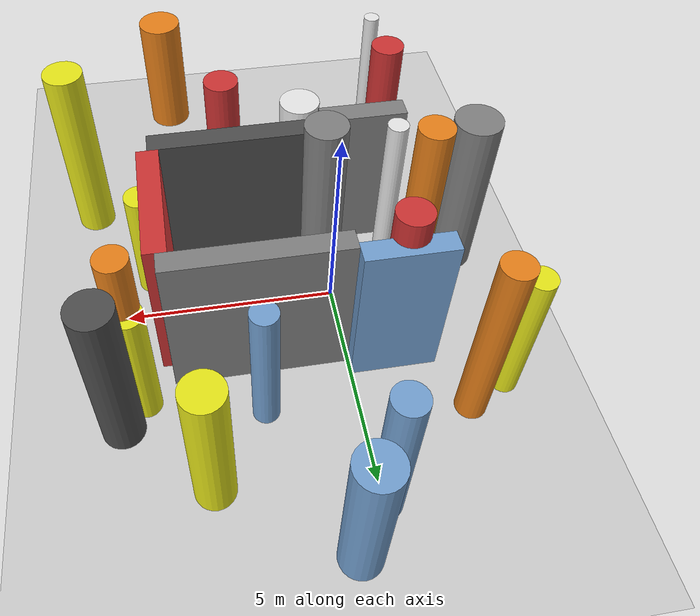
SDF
<?xml version='1.0'?>
<sdf version='1.6'>
  <world name='routeA_rl_v1__dense_recovery__rl_test__cul_de_sac_trap__000114'>
    <!-- Sun light -->
    <light name='sun' type='directional'>
      <cast_shadows>1</cast_shadows>
      <pose>0 0 10 0 0 0</pose>
      <diffuse>0.8 0.8 0.8 1</diffuse>
      <specular>0.2 0.2 0.2 1</specular>
      <attenuation>
        <range>1000</range>
        <constant>0.9</constant>
        <linear>0.01</linear>
        <quadratic>0.001</quadratic>
      </attenuation>
      <direction>-0.5 0.1 -0.9</direction>
    </light>

    <!-- Ground plane -->
    <model name='ground_plane'>
      <static>1</static>
      <link name='link'>
        <collision name='collision'>
          <geometry>
            <plane>
              <normal>0 0 1</normal>
              <size>100 100</size>
            </plane>
          </geometry>
          <surface>
            <contact>
              <collide_bitmask>65535</collide_bitmask>
              <ode/>
            </contact>
            <friction>
              <ode>
                <mu>100</mu>
                <mu2>50</mu2>
              </ode>
              <torsional><ode/></torsional>
            </friction>
            <bounce/>
          </surface>
          <max_contacts>10</max_contacts>
        </collision>
        <visual name='visual'>
          <cast_shadows>0</cast_shadows>
          <geometry>
            <plane>
              <normal>0 0 1</normal>
              <size>100 100</size>
            </plane>
          </geometry>
          <material>
            <script>
              <uri>file://media/materials/scripts/gazebo.material</uri>
              <n>Gazebo/Grey</n>
            </script>
          </material>
        </visual>
      </link>
    </model>

    <!-- Environment -->
    <magnetic_field>6e-06 2.3e-05 -4.2e-05</magnetic_field>
    <atmosphere type='adiabatic'/>
    <physics name='default_physics' default='0' type='ode'>
      <gravity>0 0 -9.8</gravity>
      <max_step_size>0.004</max_step_size>
      <real_time_factor>1</real_time_factor>
      <real_time_update_rate>250</real_time_update_rate>
    </physics>
    <scene>
      <ambient>0.4 0.4 0.4 1</ambient>
      <background>0.7 0.7 0.7 1</background>
      <shadows>1</shadows>
    </scene>
    <wind/>
    <spherical_coordinates>
      <surface_model>EARTH_WGS84</surface_model>
      <latitude_deg>0</latitude_deg>
      <longitude_deg>0</longitude_deg>
      <elevation>0</elevation>
      <heading_deg>0</heading_deg>
    </spherical_coordinates>

    <!-- ============ OBSTACLES (27) ============ -->
    <model name='trap_side_l'>
      <static>1</static>
      <link name='link'>
        <visual name='visual'>
          <geometry>
            <box>
              <size>4.0000 0.5000 4.0000</size>
            </box>
          </geometry>
          <material>
            <script>
              <n>Gazebo/DarkGrey</n>
              <uri>file://media/materials/scripts/gazebo.material</uri>
            </script>
            <ambient>0.3 0.3 0.3 1</ambient>
          </material>
        </visual>
        <collision name='collision'>
          <geometry>
            <box>
              <size>4.0000 0.5000 4.0000</size>
            </box>
          </geometry>
          <max_contacts>10</max_contacts>
          <surface>
            <contact><ode/></contact>
            <bounce/>
            <friction>
              <ode><mu>1</mu><mu2>1</mu2></ode>
              <torsional><ode/></torsional>
            </friction>
          </surface>
        </collision>
      </link>
      <pose>2.0000 -1.7500 2.0000 0 0 0.0000</pose>
    </model>

    <model name='trap_side_r'>
      <static>1</static>
      <link name='link'>
        <visual name='visual'>
          <geometry>
            <box>
              <size>4.0000 0.5000 4.0000</size>
            </box>
          </geometry>
          <material>
            <script>
              <n>Gazebo/Grey</n>
              <uri>file://media/materials/scripts/gazebo.material</uri>
            </script>
            <ambient>0.5 0.5 0.5 1</ambient>
          </material>
        </visual>
        <collision name='collision'>
          <geometry>
            <box>
              <size>4.0000 0.5000 4.0000</size>
            </box>
          </geometry>
          <max_contacts>10</max_contacts>
          <surface>
            <contact><ode/></contact>
            <bounce/>
            <friction>
              <ode><mu>1</mu><mu2>1</mu2></ode>
              <torsional><ode/></torsional>
            </friction>
          </surface>
        </collision>
      </link>
      <pose>2.0000 1.7500 2.0000 0 0 0.0000</pose>
    </model>

    <model name='trap_back'>
      <static>1</static>
      <link name='link'>
        <visual name='visual'>
          <geometry>
            <box>
              <size>0.5000 3.0000 4.0000</size>
            </box>
          </geometry>
          <material>
            <script>
              <n>Gazebo/Red</n>
              <uri>file://media/materials/scripts/gazebo.material</uri>
            </script>
            <ambient>0.8 0.2 0.2 1</ambient>
          </material>
        </visual>
        <collision name='collision'>
          <geometry>
            <box>
              <size>0.5000 3.0000 4.0000</size>
            </box>
          </geometry>
          <max_contacts>10</max_contacts>
          <surface>
            <contact><ode/></contact>
            <bounce/>
            <friction>
              <ode><mu>1</mu><mu2>1</mu2></ode>
              <torsional><ode/></torsional>
            </friction>
          </surface>
        </collision>
      </link>
      <pose>4.0000 0.0000 2.0000 0 0 0.0000</pose>
    </model>

    <model name='trap_funnel_l'>
      <static>1</static>
      <link name='link'>
        <visual name='visual'>
          <geometry>
            <box>
              <size>2.0000 0.5000 4.0000</size>
            </box>
          </geometry>
          <material>
            <script>
              <n>Gazebo/Grey</n>
              <uri>file://media/materials/scripts/gazebo.material</uri>
            </script>
            <ambient>0.5 0.5 0.5 1</ambient>
          </material>
        </visual>
        <collision name='collision'>
          <geometry>
            <box>
              <size>2.0000 0.5000 4.0000</size>
            </box>
          </geometry>
          <max_contacts>10</max_contacts>
          <surface>
            <contact><ode/></contact>
            <bounce/>
            <friction>
              <ode><mu>1</mu><mu2>1</mu2></ode>
              <torsional><ode/></torsional>
            </friction>
          </surface>
        </collision>
      </link>
      <pose>-1.0000 -2.1000 2.0000 0 0 0.0000</pose>
    </model>

    <model name='trap_funnel_r'>
      <static>1</static>
      <link name='link'>
        <visual name='visual'>
          <geometry>
            <box>
              <size>2.0000 0.5000 4.0000</size>
            </box>
          </geometry>
          <material>
            <script>
              <n>Gazebo/Blue</n>
              <uri>file://media/materials/scripts/gazebo.material</uri>
            </script>
            <ambient>0.447 0.624 0.812 1</ambient>
          </material>
        </visual>
        <collision name='collision'>
          <geometry>
            <box>
              <size>2.0000 0.5000 4.0000</size>
            </box>
          </geometry>
          <max_contacts>10</max_contacts>
          <surface>
            <contact><ode/></contact>
            <bounce/>
            <friction>
              <ode><mu>1</mu><mu2>1</mu2></ode>
              <torsional><ode/></torsional>
            </friction>
          </surface>
        </collision>
      </link>
      <pose>-1.0000 2.1000 2.0000 0 0 0.0000</pose>
    </model>

    <model name='trap_scatter_0'>
      <static>1</static>
      <link name='link'>
        <visual name='visual'>
          <geometry>
            <cylinder>
              <radius>0.3582</radius>
              <length>4.1795</length>
            </cylinder>
          </geometry>
          <material>
            <script>
              <n>Gazebo/Blue</n>
              <uri>file://media/materials/scripts/gazebo.material</uri>
            </script>
            <ambient>0.447 0.624 0.812 1</ambient>
          </material>
        </visual>
        <collision name='collision'>
          <geometry>
            <cylinder>
              <radius>0.3582</radius>
              <length>4.1795</length>
            </cylinder>
          </geometry>
          <max_contacts>10</max_contacts>
          <surface>
            <contact><ode/></contact>
            <bounce/>
            <friction>
              <ode><mu>1</mu><mu2>1</mu2></ode>
              <torsional><ode/></torsional>
            </friction>
          </surface>
        </collision>
      </link>
      <pose>-0.0375 5.4812 2.0898 0 0 0.0000</pose>
    </model>

    <model name='trap_scatter_1'>
      <static>1</static>
      <link name='link'>
        <visual name='visual'>
          <geometry>
            <cylinder>
              <radius>0.4743</radius>
              <length>3.9768</length>
            </cylinder>
          </geometry>
          <material>
            <script>
              <n>Gazebo/Blue</n>
              <uri>file://media/materials/scripts/gazebo.material</uri>
            </script>
            <ambient>0.447 0.624 0.812 1</ambient>
          </material>
        </visual>
        <collision name='collision'>
          <geometry>
            <cylinder>
              <radius>0.4743</radius>
              <length>3.9768</length>
            </cylinder>
          </geometry>
          <max_contacts>10</max_contacts>
          <surface>
            <contact><ode/></contact>
            <bounce/>
            <friction>
              <ode><mu>1</mu><mu2>1</mu2></ode>
              <torsional><ode/></torsional>
            </friction>
          </surface>
        </collision>
      </link>
      <pose>0.7048 6.4514 1.9884 0 0 0.0000</pose>
    </model>

    <model name='trap_scatter_2'>
      <static>1</static>
      <link name='link'>
        <visual name='visual'>
          <geometry>
            <cylinder>
              <radius>0.5468</radius>
              <length>4.4647</length>
            </cylinder>
          </geometry>
          <material>
            <script>
              <n>Gazebo/Grey</n>
              <uri>file://media/materials/scripts/gazebo.material</uri>
            </script>
            <ambient>0.5 0.5 0.5 1</ambient>
          </material>
        </visual>
        <collision name='collision'>
          <geometry>
            <cylinder>
              <radius>0.5468</radius>
              <length>4.4647</length>
            </cylinder>
          </geometry>
          <max_contacts>10</max_contacts>
          <surface>
            <contact><ode/></contact>
            <bounce/>
            <friction>
              <ode><mu>1</mu><mu2>1</mu2></ode>
              <torsional><ode/></torsional>
            </friction>
          </surface>
        </collision>
      </link>
      <pose>-3.2904 -0.8392 2.2324 0 0 0.0000</pose>
    </model>

    <model name='trap_scatter_3'>
      <static>1</static>
      <link name='link'>
        <visual name='visual'>
          <geometry>
            <cylinder>
              <radius>0.2084</radius>
              <length>3.2960</length>
            </cylinder>
          </geometry>
          <material>
            <script>
              <n>Gazebo/White</n>
              <uri>file://media/materials/scripts/gazebo.material</uri>
            </script>
            <ambient>0.9 0.9 0.9 1</ambient>
          </material>
        </visual>
        <collision name='collision'>
          <geometry>
            <cylinder>
              <radius>0.2084</radius>
              <length>3.2960</length>
            </cylinder>
          </geometry>
          <max_contacts>10</max_contacts>
          <surface>
            <contact><ode/></contact>
            <bounce/>
            <friction>
              <ode><mu>1</mu><mu2>1</mu2></ode>
              <torsional><ode/></torsional>
            </friction>
          </surface>
        </collision>
      </link>
      <pose>-2.4210 -6.8999 1.6480 0 0 0.0000</pose>
    </model>

    <model name='trap_scatter_4'>
      <static>1</static>
      <link name='link'>
        <visual name='visual'>
          <geometry>
            <cylinder>
              <radius>0.3461</radius>
              <length>3.0400</length>
            </cylinder>
          </geometry>
          <material>
            <script>
              <n>Gazebo/Yellow</n>
              <uri>file://media/materials/scripts/gazebo.material</uri>
            </script>
            <ambient>0.9 0.9 0.1 1</ambient>
          </material>
        </visual>
        <collision name='collision'>
          <geometry>
            <cylinder>
              <radius>0.3461</radius>
              <length>3.0400</length>
            </cylinder>
          </geometry>
          <max_contacts>10</max_contacts>
          <surface>
            <contact><ode/></contact>
            <bounce/>
            <friction>
              <ode><mu>1</mu><mu2>1</mu2></ode>
              <torsional><ode/></torsional>
            </friction>
          </surface>
        </collision>
      </link>
      <pose>4.3316 -1.0815 1.5200 0 0 0.0000</pose>
    </model>

    <model name='trap_scatter_5'>
      <static>1</static>
      <link name='link'>
        <visual name='visual'>
          <geometry>
            <cylinder>
              <radius>0.5162</radius>
              <length>4.2539</length>
            </cylinder>
          </geometry>
          <material>
            <script>
              <n>Gazebo/Grey</n>
              <uri>file://media/materials/scripts/gazebo.material</uri>
            </script>
            <ambient>0.5 0.5 0.5 1</ambient>
          </material>
        </visual>
        <collision name='collision'>
          <geometry>
            <cylinder>
              <radius>0.5162</radius>
              <length>4.2539</length>
            </cylinder>
          </geometry>
          <max_contacts>10</max_contacts>
          <surface>
            <contact><ode/></contact>
            <bounce/>
            <friction>
              <ode><mu>1</mu><mu2>1</mu2></ode>
              <torsional><ode/></torsional>
            </friction>
          </surface>
        </collision>
      </link>
      <pose>-0.0104 -1.4329 2.1270 0 0 0.0000</pose>
    </model>

    <model name='trap_scatter_7'>
      <static>1</static>
      <link name='link'>
        <visual name='visual'>
          <geometry>
            <cylinder>
              <radius>0.4185</radius>
              <length>4.6536</length>
            </cylinder>
          </geometry>
          <material>
            <script>
              <n>Gazebo/Orange</n>
              <uri>file://media/materials/scripts/gazebo.material</uri>
            </script>
            <ambient>0.9 0.5 0.1 1</ambient>
          </material>
        </visual>
        <collision name='collision'>
          <geometry>
            <cylinder>
              <radius>0.4185</radius>
              <length>4.6536</length>
            </cylinder>
          </geometry>
          <max_contacts>10</max_contacts>
          <surface>
            <contact><ode/></contact>
            <bounce/>
            <friction>
              <ode><mu>1</mu><mu2>1</mu2></ode>
              <torsional><ode/></torsional>
            </friction>
          </surface>
        </collision>
      </link>
      <pose>-2.2128 -0.5275 2.3268 0 0 0.0000</pose>
    </model>

    <model name='trap_scatter_9'>
      <static>1</static>
      <link name='link'>
        <visual name='visual'>
          <geometry>
            <cylinder>
              <radius>0.2035</radius>
              <length>3.7328</length>
            </cylinder>
          </geometry>
          <material>
            <script>
              <n>Gazebo/Orange</n>
              <uri>file://media/materials/scripts/gazebo.material</uri>
            </script>
            <ambient>0.9 0.5 0.1 1</ambient>
          </material>
        </visual>
        <collision name='collision'>
          <geometry>
            <cylinder>
              <radius>0.2035</radius>
              <length>3.7328</length>
            </cylinder>
          </geometry>
          <max_contacts>10</max_contacts>
          <surface>
            <contact><ode/></contact>
            <bounce/>
            <friction>
              <ode><mu>1</mu><mu2>1</mu2></ode>
              <torsional><ode/></torsional>
            </friction>
          </surface>
        </collision>
      </link>
      <pose>-3.5087 -0.7062 1.8664 0 0 0.0000</pose>
    </model>

    <model name='trap_scatter_10'>
      <static>1</static>
      <link name='link'>
        <visual name='visual'>
          <geometry>
            <cylinder>
              <radius>0.2495</radius>
              <length>3.9848</length>
            </cylinder>
          </geometry>
          <material>
            <script>
              <n>Gazebo/White</n>
              <uri>file://media/materials/scripts/gazebo.material</uri>
            </script>
            <ambient>0.9 0.9 0.9 1</ambient>
          </material>
        </visual>
        <collision name='collision'>
          <geometry>
            <cylinder>
              <radius>0.2495</radius>
              <length>3.9848</length>
            </cylinder>
          </geometry>
          <max_contacts>10</max_contacts>
          <surface>
            <contact><ode/></contact>
            <bounce/>
            <friction>
              <ode><mu>1</mu><mu2>1</mu2></ode>
              <torsional><ode/></torsional>
            </friction>
          </surface>
        </collision>
      </link>
      <pose>-1.6961 -1.4998 1.9924 0 0 0.0000</pose>
    </model>

    <model name='trap_scatter_11'>
      <static>1</static>
      <link name='link'>
        <visual name='visual'>
          <geometry>
            <cylinder>
              <radius>0.4614</radius>
              <length>4.7756</length>
            </cylinder>
          </geometry>
          <material>
            <script>
              <n>Gazebo/Yellow</n>
              <uri>file://media/materials/scripts/gazebo.material</uri>
            </script>
            <ambient>0.9 0.9 0.1 1</ambient>
          </material>
        </visual>
        <collision name='collision'>
          <geometry>
            <cylinder>
              <radius>0.4614</radius>
              <length>4.7756</length>
            </cylinder>
          </geometry>
          <max_contacts>10</max_contacts>
          <surface>
            <contact><ode/></contact>
            <bounce/>
            <friction>
              <ode><mu>1</mu><mu2>1</mu2></ode>
              <torsional><ode/></torsional>
            </friction>
          </surface>
        </collision>
      </link>
      <pose>5.7232 -3.5443 2.3878 0 0 0.0000</pose>
    </model>

    <model name='trap_scatter_12'>
      <static>1</static>
      <link name='link'>
        <visual name='visual'>
          <geometry>
            <cylinder>
              <radius>0.3568</radius>
              <length>4.8749</length>
            </cylinder>
          </geometry>
          <material>
            <script>
              <n>Gazebo/Orange</n>
              <uri>file://media/materials/scripts/gazebo.material</uri>
            </script>
            <ambient>0.9 0.5 0.1 1</ambient>
          </material>
        </visual>
        <collision name='collision'>
          <geometry>
            <cylinder>
              <radius>0.3568</radius>
              <length>4.8749</length>
            </cylinder>
          </geometry>
          <max_contacts>10</max_contacts>
          <surface>
            <contact><ode/></contact>
            <bounce/>
            <friction>
              <ode><mu>1</mu><mu2>1</mu2></ode>
              <torsional><ode/></torsional>
            </friction>
          </surface>
        </collision>
      </link>
      <pose>-2.4610 3.5703 2.4375 0 0 0.0000</pose>
    </model>

    <model name='trap_scatter_13'>
      <static>1</static>
      <link name='link'>
        <visual name='visual'>
          <geometry>
            <cylinder>
              <radius>0.3151</radius>
              <length>3.7353</length>
            </cylinder>
          </geometry>
          <material>
            <script>
              <n>Gazebo/Yellow</n>
              <uri>file://media/materials/scripts/gazebo.material</uri>
            </script>
            <ambient>0.9 0.9 0.1 1</ambient>
          </material>
        </visual>
        <collision name='collision'>
          <geometry>
            <cylinder>
              <radius>0.3151</radius>
              <length>3.7353</length>
            </cylinder>
          </geometry>
          <max_contacts>10</max_contacts>
          <surface>
            <contact><ode/></contact>
            <bounce/>
            <friction>
              <ode><mu>1</mu><mu2>1</mu2></ode>
              <torsional><ode/></torsional>
            </friction>
          </surface>
        </collision>
      </link>
      <pose>-3.3978 3.0820 1.8677 0 0 0.0000</pose>
    </model>

    <model name='trap_scatter_14'>
      <static>1</static>
      <link name='link'>
        <visual name='visual'>
          <geometry>
            <cylinder>
              <radius>0.3053</radius>
              <length>3.6773</length>
            </cylinder>
          </geometry>
          <material>
            <script>
              <n>Gazebo/Blue</n>
              <uri>file://media/materials/scripts/gazebo.material</uri>
            </script>
            <ambient>0.447 0.624 0.812 1</ambient>
          </material>
        </visual>
        <collision name='collision'>
          <geometry>
            <cylinder>
              <radius>0.3053</radius>
              <length>3.6773</length>
            </cylinder>
          </geometry>
          <max_contacts>10</max_contacts>
          <surface>
            <contact><ode/></contact>
            <bounce/>
            <friction>
              <ode><mu>1</mu><mu2>1</mu2></ode>
              <torsional><ode/></torsional>
            </friction>
          </surface>
        </collision>
      </link>
      <pose>2.0583 3.0138 1.8387 0 0 0.0000</pose>
    </model>

    <model name='trap_scatter_15'>
      <static>1</static>
      <link name='link'>
        <visual name='visual'>
          <geometry>
            <cylinder>
              <radius>0.4788</radius>
              <length>4.3867</length>
            </cylinder>
          </geometry>
          <material>
            <script>
              <n>Gazebo/DarkGrey</n>
              <uri>file://media/materials/scripts/gazebo.material</uri>
            </script>
            <ambient>0.3 0.3 0.3 1</ambient>
          </material>
        </visual>
        <collision name='collision'>
          <geometry>
            <cylinder>
              <radius>0.4788</radius>
              <length>4.3867</length>
            </cylinder>
          </geometry>
          <max_contacts>10</max_contacts>
          <surface>
            <contact><ode/></contact>
            <bounce/>
            <friction>
              <ode><mu>1</mu><mu2>1</mu2></ode>
              <torsional><ode/></torsional>
            </friction>
          </surface>
        </collision>
      </link>
      <pose>5.1874 2.9669 2.1933 0 0 0.0000</pose>
    </model>

    <model name='trap_scatter_16'>
      <static>1</static>
      <link name='link'>
        <visual name='visual'>
          <geometry>
            <cylinder>
              <radius>0.4520</radius>
              <length>3.9359</length>
            </cylinder>
          </geometry>
          <material>
            <script>
              <n>Gazebo/Yellow</n>
              <uri>file://media/materials/scripts/gazebo.material</uri>
            </script>
            <ambient>0.9 0.9 0.1 1</ambient>
          </material>
        </visual>
        <collision name='collision'>
          <geometry>
            <cylinder>
              <radius>0.4520</radius>
              <length>3.9359</length>
            </cylinder>
          </geometry>
          <max_contacts>10</max_contacts>
          <surface>
            <contact><ode/></contact>
            <bounce/>
            <friction>
              <ode><mu>1</mu><mu2>1</mu2></ode>
              <torsional><ode/></torsional>
            </friction>
          </surface>
        </collision>
      </link>
      <pose>3.3610 4.6561 1.9679 0 0 0.0000</pose>
    </model>

    <model name='trap_scatter_17'>
      <static>1</static>
      <link name='link'>
        <visual name='visual'>
          <geometry>
            <cylinder>
              <radius>0.4074</radius>
              <length>4.6267</length>
            </cylinder>
          </geometry>
          <material>
            <script>
              <n>Gazebo/Red</n>
              <uri>file://media/materials/scripts/gazebo.material</uri>
            </script>
            <ambient>0.8 0.2 0.2 1</ambient>
          </material>
        </visual>
        <collision name='collision'>
          <geometry>
            <cylinder>
              <radius>0.4074</radius>
              <length>4.6267</length>
            </cylinder>
          </geometry>
          <max_contacts>10</max_contacts>
          <surface>
            <contact><ode/></contact>
            <bounce/>
            <friction>
              <ode><mu>1</mu><mu2>1</mu2></ode>
              <torsional><ode/></torsional>
            </friction>
          </surface>
        </collision>
      </link>
      <pose>-1.0968 1.7788 2.3133 0 0 0.0000</pose>
    </model>

    <model name='trap_scatter_19'>
      <static>1</static>
      <link name='link'>
        <visual name='visual'>
          <geometry>
            <cylinder>
              <radius>0.4032</radius>
              <length>4.5052</length>
            </cylinder>
          </geometry>
          <material>
            <script>
              <n>Gazebo/Red</n>
              <uri>file://media/materials/scripts/gazebo.material</uri>
            </script>
            <ambient>0.8 0.2 0.2 1</ambient>
          </material>
        </visual>
        <collision name='collision'>
          <geometry>
            <cylinder>
              <radius>0.4032</radius>
              <length>4.5052</length>
            </cylinder>
          </geometry>
          <max_contacts>10</max_contacts>
          <surface>
            <contact><ode/></contact>
            <bounce/>
            <friction>
              <ode><mu>1</mu><mu2>1</mu2></ode>
              <torsional><ode/></torsional>
            </friction>
          </surface>
        </collision>
      </link>
      <pose>2.1760 -3.0624 2.2526 0 0 0.0000</pose>
    </model>

    <model name='trap_scatter_20'>
      <static>1</static>
      <link name='link'>
        <visual name='visual'>
          <geometry>
            <cylinder>
              <radius>0.5485</radius>
              <length>3.2622</length>
            </cylinder>
          </geometry>
          <material>
            <script>
              <n>Gazebo/Orange</n>
              <uri>file://media/materials/scripts/gazebo.material</uri>
            </script>
            <ambient>0.9 0.5 0.1 1</ambient>
          </material>
        </visual>
        <collision name='collision'>
          <geometry>
            <cylinder>
              <radius>0.5485</radius>
              <length>3.2622</length>
            </cylinder>
          </geometry>
          <max_contacts>10</max_contacts>
          <surface>
            <contact><ode/></contact>
            <bounce/>
            <friction>
              <ode><mu>1</mu><mu2>1</mu2></ode>
              <torsional><ode/></torsional>
            </friction>
          </surface>
        </collision>
      </link>
      <pose>3.4728 -7.6055 1.6311 0 0 0.0000</pose>
    </model>

    <model name='trap_scatter_21'>
      <static>1</static>
      <link name='link'>
        <visual name='visual'>
          <geometry>
            <cylinder>
              <radius>0.4937</radius>
              <length>3.4489</length>
            </cylinder>
          </geometry>
          <material>
            <script>
              <n>Gazebo/White</n>
              <uri>file://media/materials/scripts/gazebo.material</uri>
            </script>
            <ambient>0.9 0.9 0.9 1</ambient>
          </material>
        </visual>
        <collision name='collision'>
          <geometry>
            <cylinder>
              <radius>0.4937</radius>
              <length>3.4489</length>
            </cylinder>
          </geometry>
          <max_contacts>10</max_contacts>
          <surface>
            <contact><ode/></contact>
            <bounce/>
            <friction>
              <ode><mu>1</mu><mu2>1</mu2></ode>
              <torsional><ode/></torsional>
            </friction>
          </surface>
        </collision>
      </link>
      <pose>0.2565 -3.3506 1.7245 0 0 0.0000</pose>
    </model>

    <model name='trap_scatter_22'>
      <static>1</static>
      <link name='link'>
        <visual name='visual'>
          <geometry>
            <cylinder>
              <radius>0.4263</radius>
              <length>3.5432</length>
            </cylinder>
          </geometry>
          <material>
            <script>
              <n>Gazebo/Red</n>
              <uri>file://media/materials/scripts/gazebo.material</uri>
            </script>
            <ambient>0.8 0.2 0.2 1</ambient>
          </material>
        </visual>
        <collision name='collision'>
          <geometry>
            <cylinder>
              <radius>0.4263</radius>
              <length>3.5432</length>
            </cylinder>
          </geometry>
          <max_contacts>10</max_contacts>
          <surface>
            <contact><ode/></contact>
            <bounce/>
            <friction>
              <ode><mu>1</mu><mu2>1</mu2></ode>
              <torsional><ode/></torsional>
            </friction>
          </surface>
        </collision>
      </link>
      <pose>-2.4206 -5.1667 1.7716 0 0 0.0000</pose>
    </model>

    <model name='trap_scatter_23'>
      <static>1</static>
      <link name='link'>
        <visual name='visual'>
          <geometry>
            <cylinder>
              <radius>0.3516</radius>
              <length>3.3638</length>
            </cylinder>
          </geometry>
          <material>
            <script>
              <n>Gazebo/Yellow</n>
              <uri>file://media/materials/scripts/gazebo.material</uri>
            </script>
            <ambient>0.9 0.9 0.1 1</ambient>
          </material>
        </visual>
        <collision name='collision'>
          <geometry>
            <cylinder>
              <radius>0.3516</radius>
              <length>3.3638</length>
            </cylinder>
          </geometry>
          <max_contacts>10</max_contacts>
          <surface>
            <contact><ode/></contact>
            <bounce/>
            <friction>
              <ode><mu>1</mu><mu2>1</mu2></ode>
              <torsional><ode/></torsional>
            </friction>
          </surface>
        </collision>
      </link>
      <pose>4.6658 2.4126 1.6819 0 0 0.0000</pose>
    </model>

    <model name='trap_scatter_24'>
      <static>1</static>
      <link name='link'>
        <visual name='visual'>
          <geometry>
            <cylinder>
              <radius>0.3484</radius>
              <length>4.8113</length>
            </cylinder>
          </geometry>
          <material>
            <script>
              <n>Gazebo/Orange</n>
              <uri>file://media/materials/scripts/gazebo.material</uri>
            </script>
            <ambient>0.9 0.5 0.1 1</ambient>
          </material>
        </visual>
        <collision name='collision'>
          <geometry>
            <cylinder>
              <radius>0.3484</radius>
              <length>4.8113</length>
            </cylinder>
          </geometry>
          <max_contacts>10</max_contacts>
          <surface>
            <contact><ode/></contact>
            <bounce/>
            <friction>
              <ode><mu>1</mu><mu2>1</mu2></ode>
              <torsional><ode/></torsional>
            </friction>
          </surface>
        </collision>
      </link>
      <pose>4.7304 2.2104 2.4057 0 0 0.0000</pose>
    </model>

    <!-- GUI camera -->
    <gui fullscreen='0'>
      <camera name='user_camera'>
        <pose>-15 0 18 0 0.85 0.15</pose>
        <view_controller>orbit</view_controller>
        <projection_type>perspective</projection_type>
      </camera>
    </gui>
  </world>
</sdf>
